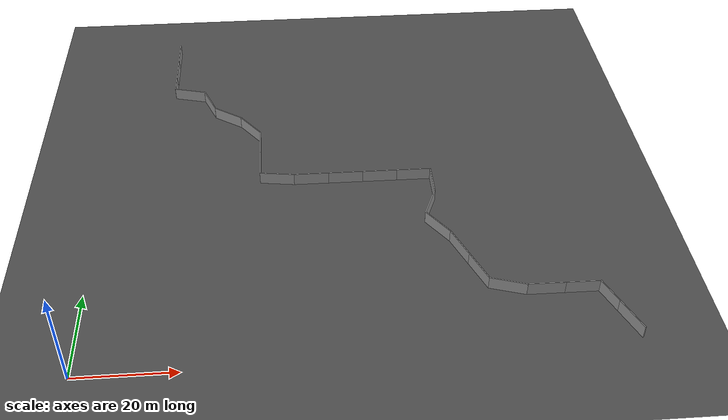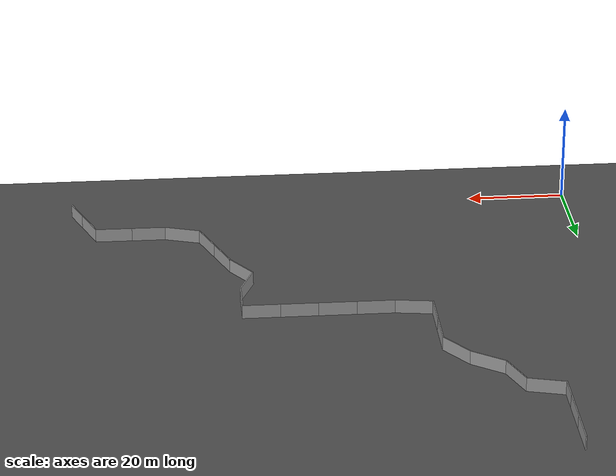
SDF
<sdf version="1.7">
 <world name="default">
  <light name="sun" type="directional">
   <pose>0 0 10 0 -0 0</pose>
   <diffuse>0.8 0.8 0.8 1</diffuse>
   <specular>0.2 0.2 0.2 1</specular>
   <attenuation>
    <range>1000</range>
    <constant>0.9</constant>
    <linear>0.01</linear>
    <quadratic>0.001</quadratic>
   </attenuation>
   <direction>-0.5 0.1 -0.9</direction>
   <spot><inner_angle>0</inner_angle><outer_angle>0</outer_angle><falloff>0</falloff></spot>
  </light>
  <model name="ground_plane">
   <static>1</static>
   <link name="link">
    <collision name="collision">
     <geometry><plane><normal>0 0 1</normal><size>250 250</size></plane></geometry>
     <surface><friction><ode><mu>100</mu><mu2>50</mu2></ode></friction></surface>
    </collision>
    <visual name="visual">
     <cast_shadows>0</cast_shadows>
     <geometry><plane><normal>0 0 1</normal><size>250 250</size></plane></geometry>
     <material>
      <script><uri>file://media/materials/scripts/gazebo.material</uri><name>Gazebo/DarkGrey</name></script>
     </material>
    </visual>
   </link>
  </model>
  <gravity>0 0 -9.8</gravity>
  <magnetic_field>6e-06 2.3e-05 -4.2e-05</magnetic_field>
  <atmosphere type="adiabatic"/>
  <physics type="ode">
   <max_step_size>0.001</max_step_size>
   <real_time_factor>1</real_time_factor>
   <real_time_update_rate>1000</real_time_update_rate>
  </physics>
  <scene><ambient>0.4 0.4 0.4 1</ambient><background>0.7 0.7 0.7 1</background><shadows>1</shadows></scene>
  <spherical_coordinates>
   <surface_model>EARTH_WGS84</surface_model>
   <latitude_deg>0</latitude_deg>
   <longitude_deg>0</longitude_deg>
   <elevation>0</elevation>
   <heading_deg>0</heading_deg>
  </spherical_coordinates>
  <model name="grey_wall">
   <static>1</static>
   <link name="link">
    <pose>0 0 1.4 0 -0 0</pose>
    <collision name="collision"><geometry><box><size>7.5 0.2 2.8</size></box></geometry></collision>
    <visual name="visual">
     <cast_shadows>0</cast_shadows>
     <geometry><box><size>7.5 0.2 2.8</size></box></geometry>
     <material>
      <script>
       <uri>model://grey_wall/materials/scripts</uri>
       <uri>model://grey_wall/materials/textures</uri>
       <name>vrc/grey_wall</name>
      </script>
     </material>
    </visual>
   </link>
   <pose>103.31 5.48127 0 0 0 -1.18579</pose>
  </model>
  <model name="grey_wall_clone">
   <static>1</static>
   <link name="link">
    <pose>0 0 1.4 0 -0 0</pose>
    <collision name="collision"><geometry><box><size>7.5 0.2 2.8</size></box></geometry></collision>
    <visual name="visual">
     <cast_shadows>0</cast_shadows>
     <geometry><box><size>7.5 0.2 2.8</size></box></geometry>
     <material>
      <script>
       <uri>model://grey_wall/materials/scripts</uri>
       <uri>model://grey_wall/materials/textures</uri>
       <name>vrc/grey_wall</name>
      </script>
     </material>
    </visual>
   </link>
   <pose>101.086 10.9804 0 0 0 -1.18579</pose>
  </model>
  <model name="grey_wall_clone_0">
   <static>1</static>
   <link name="link">
    <pose>0 0 1.4 0 -0 0</pose>
    <collision name="collision"><geometry><box><size>7.5 0.2 2.8</size></box></geometry></collision>
    <visual name="visual">
     <cast_shadows>0</cast_shadows>
     <geometry><box><size>7.5 0.2 2.8</size></box></geometry>
     <material>
      <script>
       <uri>model://grey_wall/materials/scripts</uri>
       <uri>model://grey_wall/materials/textures</uri>
       <name>vrc/grey_wall</name>
      </script>
     </material>
    </visual>
   </link>
   <pose>89.1862 14.4759 0 0 0 -0.005883</pose>
  </model>
  <model name="grey_wall_clone_1">
   <static>1</static>
   <link name="link">
    <pose>0 0 1.4 0 -0 0</pose>
    <collision name="collision"><geometry><box><size>7.5 0.2 2.8</size></box></geometry></collision>
    <visual name="visual">
     <cast_shadows>0</cast_shadows>
     <geometry><box><size>7.5 0.2 2.8</size></box></geometry>
     <material>
      <script>
       <uri>model://grey_wall/materials/scripts</uri>
       <uri>model://grey_wall/materials/textures</uri>
       <name>vrc/grey_wall</name>
      </script>
     </material>
    </visual>
   </link>
   <pose>81.9374 15.6109 0 0 0 -0.306297</pose>
  </model>
  <model name="grey_wall_clone_2">
   <static>1</static>
   <link name="link">
    <pose>0 0 1.4 0 -0 0</pose>
    <collision name="collision"><geometry><box><size>7.5 0.2 2.8</size></box></geometry></collision>
    <visual name="visual">
     <cast_shadows>0</cast_shadows>
     <geometry><box><size>7.5 0.2 2.8</size></box></geometry>
     <material>
      <script>
       <uri>model://grey_wall/materials/scripts</uri>
       <uri>model://grey_wall/materials/textures</uri>
       <name>vrc/grey_wall</name>
      </script>
     </material>
    </visual>
   </link>
   <pose>77.0184 20.1519 0 0 0 -1.18579</pose>
  </model>
  <model name="grey_wall_clone_3">
   <static>1</static>
   <link name="link">
    <pose>0 0 1.4 0 -0 0</pose>
    <collision name="collision"><geometry><box><size>7.5 0.2 2.8</size></box></geometry></collision>
    <visual name="visual">
     <cast_shadows>0</cast_shadows>
     <geometry><box><size>7.5 0.2 2.8</size></box></geometry>
     <material>
      <script>
       <uri>model://grey_wall/materials/scripts</uri>
       <uri>model://grey_wall/materials/textures</uri>
       <name>vrc/grey_wall</name>
      </script>
     </material>
    </visual>
   </link>
   <pose>71.3495 47.2184 0 0 0 -1.57287</pose>
  </model>
  <model name="grey_wall_clone_4">
   <static>1</static>
   <link name="link">
    <pose>0 0 1.4 0 -0 0</pose>
    <collision name="collision"><geometry><box><size>7.5 0.2 2.8</size></box></geometry></collision>
    <visual name="visual">
     <cast_shadows>0</cast_shadows>
     <geometry><box><size>7.5 0.2 2.8</size></box></geometry>
     <material>
      <script>
       <uri>model://grey_wall/materials/scripts</uri>
       <uri>model://grey_wall/materials/textures</uri>
       <name>vrc/grey_wall</name>
      </script>
     </material>
    </visual>
   </link>
   <pose>69.9409 40.0314 0 0 0 -1.95613</pose>
  </model>
  <model name="grey_wall_clone_5">
   <static>1</static>
   <link name="link">
    <pose>0 0 1.4 0 -0 0</pose>
    <collision name="collision"><geometry><box><size>7.5 0.2 2.8</size></box></geometry></collision>
    <visual name="visual">
     <cast_shadows>0</cast_shadows>
     <geometry><box><size>7.5 0.2 2.8</size></box></geometry>
     <material>
      <script>
       <uri>model://grey_wall/materials/scripts</uri>
       <uri>model://grey_wall/materials/textures</uri>
       <name>vrc/grey_wall</name>
      </script>
     </material>
    </visual>
   </link>
   <pose>70.6737 33.5793 -0 0 0 -0.961037</pose>
  </model>
  <model name="grey_wall_clone_6">
   <static>1</static>
   <link name="link">
    <pose>0 0 1.4 0 -0 0</pose>
    <collision name="collision"><geometry><box><size>7.5 0.2 2.8</size></box></geometry></collision>
    <visual name="visual">
     <cast_shadows>0</cast_shadows>
     <geometry><box><size>7.5 0.2 2.8</size></box></geometry>
     <material>
      <script>
       <uri>model://grey_wall/materials/scripts</uri>
       <uri>model://grey_wall/materials/textures</uri>
       <name>vrc/grey_wall</name>
      </script>
     </material>
    </visual>
   </link>
   <pose>74.2231 27.0509 0 0 0 -1.18579</pose>
  </model>
  <model name="grey_wall_clone_7">
   <static>1</static>
   <link name="link">
    <pose>0 0 1.4 0 -0 0</pose>
    <collision name="collision"><geometry><box><size>7.5 0.2 2.8</size></box></geometry></collision>
    <visual name="visual">
     <cast_shadows>0</cast_shadows>
     <geometry><box><size>7.5 0.2 2.8</size></box></geometry>
     <material>
      <script>
       <uri>model://grey_wall/materials/scripts</uri>
       <uri>model://grey_wall/materials/textures</uri>
       <name>vrc/grey_wall</name>
      </script>
     </material>
    </visual>
   </link>
   <pose>45.2633 50.9545 0 0 0 -0.002667</pose>
  </model>
  <model name="grey_wall_clone_8">
   <static>1</static>
   <link name="link">
    <pose>0 0 1.4 0 -0 0</pose>
    <collision name="collision"><geometry><box><size>7.5 0.2 2.8</size></box></geometry></collision>
    <visual name="visual">
     <cast_shadows>0</cast_shadows>
     <geometry><box><size>7.5 0.2 2.8</size></box></geometry>
     <material>
      <script>
       <uri>model://grey_wall/materials/scripts</uri>
       <uri>model://grey_wall/materials/textures</uri>
       <name>vrc/grey_wall</name>
      </script>
     </material>
    </visual>
   </link>
   <pose>37.8169 51.4804 0 0 0 -0.1382</pose>
  </model>
  <model name="grey_wall_clone_9">
   <static>1</static>
   <link name="link">
    <pose>0 0 1.4 0 -0 0</pose>
    <collision name="collision"><geometry><box><size>7.5 0.2 2.8</size></box></geometry></collision>
    <visual name="visual">
     <cast_shadows>0</cast_shadows>
     <geometry><box><size>7.5 0.2 2.8</size></box></geometry>
     <material>
      <script>
       <uri>model://grey_wall/materials/scripts</uri>
       <uri>model://grey_wall/materials/textures</uri>
       <name>vrc/grey_wall</name>
      </script>
     </material>
    </visual>
   </link>
   <pose>26.6311 74.9744 0 0 0 -0.605736</pose>
  </model>
  <model name="grey_wall_clone_10">
   <static>1</static>
   <link name="link">
    <pose>0 0 1.4 0 -0 0</pose>
    <collision name="collision"><geometry><box><size>7.5 0.2 2.8</size></box></geometry></collision>
    <visual name="visual">
     <cast_shadows>0</cast_shadows>
     <geometry><box><size>7.5 0.2 2.8</size></box></geometry>
     <material>
      <script>
       <uri>model://grey_wall/materials/scripts</uri>
       <uri>model://grey_wall/materials/textures</uri>
       <name>vrc/grey_wall</name>
      </script>
     </material>
    </visual>
   </link>
   <pose>22.1747 80.5369 0 0 0 -1.18579</pose>
  </model>
  <model name="grey_wall_clone_11">
   <static>1</static>
   <link name="link">
    <pose>0 0 1.4 0 -0 0</pose>
    <collision name="collision"><geometry><box><size>7.5 0.2 2.8</size></box></geometry></collision>
    <visual name="visual">
     <cast_shadows>0</cast_shadows>
     <geometry><box><size>7.5 0.2 2.8</size></box></geometry>
     <material>
      <script>
       <uri>model://grey_wall/materials/scripts</uri>
       <uri>model://grey_wall/materials/textures</uri>
       <name>vrc/grey_wall</name>
      </script>
     </material>
    </visual>
   </link>
   <pose>17.2153 84.9098 -0 0 0 -0.258212</pose>
  </model>
  <model name="grey_wall_clone_12">
   <static>1</static>
   <link name="link">
    <pose>0 0 1.4 0 -0 0</pose>
    <collision name="collision"><geometry><box><size>7.5 0.2 2.8</size></box></geometry></collision>
    <visual name="visual">
     <cast_shadows>0</cast_shadows>
     <geometry><box><size>7.5 0.2 2.8</size></box></geometry>
     <material>
      <script>
       <uri>model://grey_wall/materials/scripts</uri>
       <uri>model://grey_wall/materials/textures</uri>
       <name>vrc/grey_wall</name>
      </script>
     </material>
    </visual>
   </link>
   <pose>13.6538 94.5602 0 0 0 -1.57054</pose>
  </model>
  <model name="grey_wall_clone_13">
   <static>1</static>
   <link name="link">
    <pose>0 0 1.4 0 -0 0</pose>
    <collision name="collision"><geometry><box><size>7.5 0.2 2.8</size></box></geometry></collision>
    <visual name="visual">
     <cast_shadows>0</cast_shadows>
     <geometry><box><size>7.5 0.2 2.8</size></box></geometry>
     <material>
      <script>
       <uri>model://grey_wall/materials/scripts</uri>
       <uri>model://grey_wall/materials/textures</uri>
       <name>vrc/grey_wall</name>
      </script>
     </material>
    </visual>
   </link>
   <pose>13.6458 102.033 0 0 0 -1.5701</pose>
  </model>
  <model name="grey_wall_clone_12_clone">
   <static>1</static>
   <link name="link">
    <pose>0 0 1.4 0 -0 0</pose>
    <collision name="collision"><geometry><box><size>7.5 0.2 2.8</size></box></geometry></collision>
    <visual name="visual">
     <cast_shadows>0</cast_shadows>
     <geometry><box><size>7.5 0.2 2.8</size></box></geometry>
     <material>
      <script>
       <uri>model://grey_wall/materials/scripts</uri>
       <uri>model://grey_wall/materials/textures</uri>
       <name>vrc/grey_wall</name>
      </script>
     </material>
    </visual>
   </link>
   <pose>13.6539 89.5201 0 0 0 -1.57054</pose>
  </model>
  <model name="grey_wall_clone_10_clone">
   <static>1</static>
   <link name="link">
    <pose>0 0 1.4 0 -0 0</pose>
    <collision name="collision"><geometry><box><size>7.5 0.2 2.8</size></box></geometry></collision>
    <visual name="visual">
     <cast_shadows>0</cast_shadows>
     <geometry><box><size>7.5 0.2 2.8</size></box></geometry>
     <material>
      <script>
       <uri>model://grey_wall/materials/scripts</uri>
       <uri>model://grey_wall/materials/textures</uri>
       <name>vrc/grey_wall</name>
      </script>
     </material>
    </visual>
   </link>
   <pose>34.1415 63.1387 0 0 0 -1.56703</pose>
  </model>
  <model name="grey_wall_clone_10_clone_0">
   <static>1</static>
   <link name="link">
    <pose>0 0 1.4 0 -0 0</pose>
    <collision name="collision"><geometry><box><size>7.5 0.2 2.8</size></box></geometry></collision>
    <visual name="visual">
     <cast_shadows>0</cast_shadows>
     <geometry><box><size>7.5 0.2 2.8</size></box></geometry>
     <material>
      <script>
       <uri>model://grey_wall/materials/scripts</uri>
       <uri>model://grey_wall/materials/textures</uri>
       <name>vrc/grey_wall</name>
      </script>
     </material>
    </visual>
   </link>
   <pose>31.9195 69.8459 0 0 0 -0.934001</pose>
  </model>
  <model name="grey_wall_clone_10_clone_clone">
   <static>1</static>
   <link name="link">
    <pose>0 0 1.4 0 -0 0</pose>
    <collision name="collision"><geometry><box><size>7.5 0.2 2.8</size></box></geometry></collision>
    <visual name="visual">
     <cast_shadows>0</cast_shadows>
     <geometry><box><size>7.5 0.2 2.8</size></box></geometry>
     <material>
      <script>
       <uri>model://grey_wall/materials/scripts</uri>
       <uri>model://grey_wall/materials/textures</uri>
       <name>vrc/grey_wall</name>
      </script>
     </material>
    </visual>
   </link>
   <pose>34.1718 55.6482 0 0 0 -1.56703</pose>
  </model>
  <model name="grey_wall_clone_7_clone">
   <static>1</static>
   <link name="link">
    <pose>0 0 1.4 0 -0 0</pose>
    <collision name="collision"><geometry><box><size>7.5 0.2 2.8</size></box></geometry></collision>
    <visual name="visual">
     <cast_shadows>0</cast_shadows>
     <geometry><box><size>7.5 0.2 2.8</size></box></geometry>
     <material>
      <script>
       <uri>model://grey_wall/materials/scripts</uri>
       <uri>model://grey_wall/materials/textures</uri>
       <name>vrc/grey_wall</name>
      </script>
     </material>
    </visual>
   </link>
   <pose>52.7509 50.937 0 0 0 -0.002667</pose>
  </model>
  <model name="grey_wall_clone_7_clone_0">
   <static>1</static>
   <link name="link">
    <pose>0 0 1.4 0 -0 0</pose>
    <collision name="collision"><geometry><box><size>7.5 0.2 2.8</size></box></geometry></collision>
    <visual name="visual">
     <cast_shadows>0</cast_shadows>
     <geometry><box><size>7.5 0.2 2.8</size></box></geometry>
     <material>
      <script>
       <uri>model://grey_wall/materials/scripts</uri>
       <uri>model://grey_wall/materials/textures</uri>
       <name>vrc/grey_wall</name>
      </script>
     </material>
    </visual>
   </link>
   <pose>60.2393 50.9167 0 0 0 -0.002667</pose>
  </model>
  <model name="grey_wall_clone_7_clone_1">
   <static>1</static>
   <link name="link">
    <pose>0 0 1.4 0 -0 0</pose>
    <collision name="collision"><geometry><box><size>7.5 0.2 2.8</size></box></geometry></collision>
    <visual name="visual">
     <cast_shadows>0</cast_shadows>
     <geometry><box><size>7.5 0.2 2.8</size></box></geometry>
     <material>
      <script>
       <uri>model://grey_wall/materials/scripts</uri>
       <uri>model://grey_wall/materials/textures</uri>
       <name>vrc/grey_wall</name>
      </script>
     </material>
    </visual>
   </link>
   <pose>67.7106 50.8987 0 0 0 -0.002667</pose>
  </model>
  <model name="grey_wall_clone_0_clone">
   <static>1</static>
   <link name="link">
    <pose>0 0 1.4 0 -0 0</pose>
    <collision name="collision"><geometry><box><size>7.5 0.2 2.8</size></box></geometry></collision>
    <visual name="visual">
     <cast_shadows>0</cast_shadows>
     <geometry><box><size>7.5 0.2 2.8</size></box></geometry>
     <material>
      <script>
       <uri>model://grey_wall/materials/scripts</uri>
       <uri>model://grey_wall/materials/textures</uri>
       <name>vrc/grey_wall</name>
      </script>
     </material>
    </visual>
   </link>
   <pose>96.0504 14.4375 0 0 0 -0.005883</pose>
  </model>
 </world>
</sdf>
